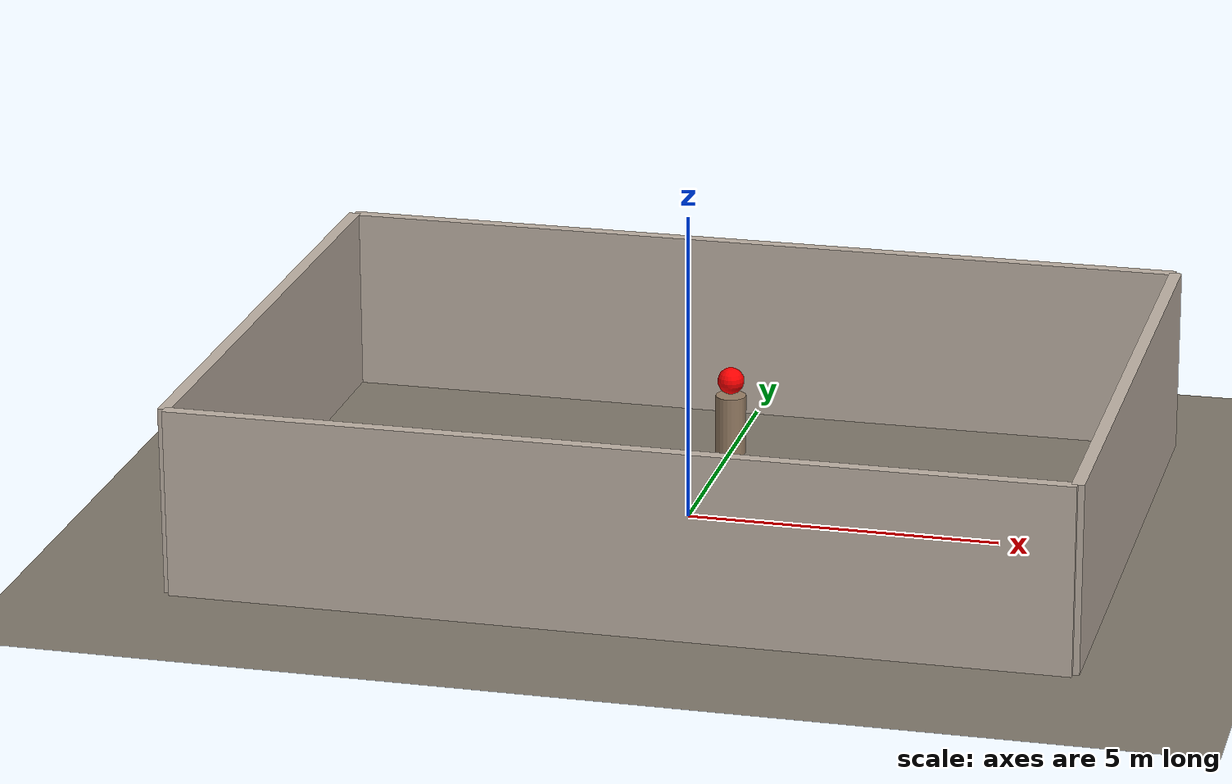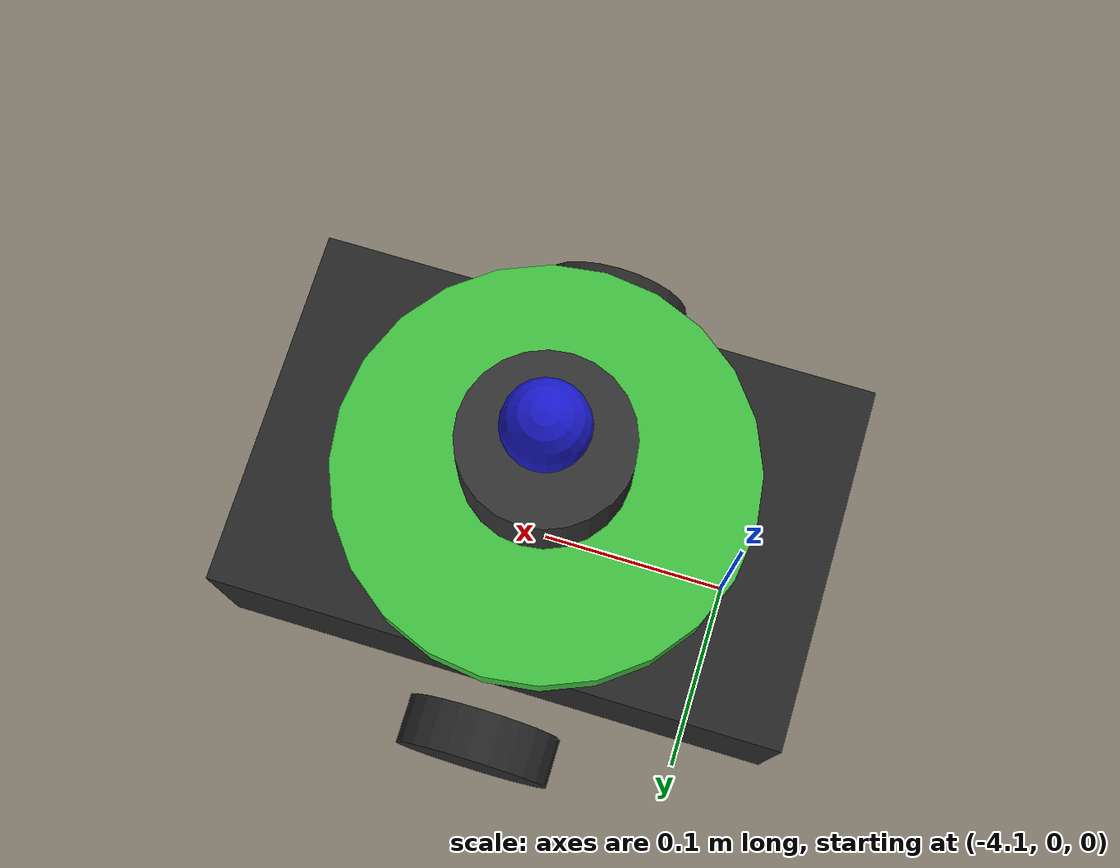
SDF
<?xml version="1.0" ?>
<sdf version="1.6">
  <world name="test_case_arena">

    <!-- ── Required Gazebo plugins ──────────────────────────────── -->
    <plugin filename="gz-sim-physics-system"        name="gz::sim::systems::Physics"/>
    <plugin filename="gz-sim-user-commands-system"  name="gz::sim::systems::UserCommands"/>
    <plugin filename="gz-sim-scene-broadcaster-system" name="gz::sim::systems::SceneBroadcaster"/>
    <plugin filename="gz-sim-sensors-system"        name="gz::sim::systems::Sensors">
      <render_engine>ogre2</render_engine>
    </plugin>
    <plugin filename="gz-sim-contact-system"        name="gz::sim::systems::Contact"/>

    <scene>
      <ambient>0.65 0.65 0.65 1</ambient>
      <background>0.3 0.3 0.4 1</background>
    </scene>

    <!-- Central lighting -->
    <light name="sun" type="directional">
      <pose>0 0 10 0 0 0</pose>
      <diffuse>0.9 0.9 0.85 1</diffuse>
      <specular>0.3 0.3 0.3 1</specular>
      <direction>-0.5 -0.5 -1</direction>
      <attenuation><range>100</range><constant>0.4</constant><linear>0.01</linear><quadratic>0.001</quadratic></attenuation>
    </light>

    <light name="fill_light" type="point">
      <pose>0 0 5 0 0 0</pose>
      <diffuse>0.7 0.7 0.7 1</diffuse>
      <specular>0.1 0.1 0.1 1</specular>
      <attenuation><range>30</range><constant>0.3</constant><linear>0.01</linear><quadratic>0.001</quadratic></attenuation>
    </light>

    <physics type="ode">
      <max_step_size>0.001</max_step_size>
      <real_time_factor>1.0</real_time_factor>
      <real_time_update_rate>1000</real_time_update_rate>
    </physics>

    <!-- ══════════════ FLOOR ══════════════ -->
    <model name="floor">
      <static>true</static>
      <link name="link">
        <collision name="collision">
          <geometry><plane><normal>0 0 1</normal><size>30 30</size></plane></geometry>
        </collision>
        <visual name="visual">
          <geometry><plane><normal>0 0 1</normal><size>30 30</size></plane></geometry>
          <material>
            <ambient>0.45 0.42 0.38 1</ambient>
            <diffuse>0.50 0.47 0.42 1</diffuse>
          </material>
        </visual>
      </link>
    </model>

    <!-- ══════════════ ARENA WALLS (14 m × 10 m) ══════════════ -->
    <!-- North wall  y = +5 -->
    <model name="wall_north">
      <static>true</static>
      <link name="link">
        <pose>0 5 1.5 0 0 0</pose>
        <collision name="c"><geometry><box><size>14 0.2 3</size></box></geometry></collision>
        <visual name="v">
          <geometry><box><size>14 0.2 3</size></box></geometry>
          <material><ambient>0.70 0.65 0.60 1</ambient><diffuse>0.75 0.70 0.65 1</diffuse></material>
        </visual>
      </link>
    </model>
    <!-- South wall  y = −5 -->
    <model name="wall_south">
      <static>true</static>
      <link name="link">
        <pose>0 -5 1.5 0 0 0</pose>
        <collision name="c"><geometry><box><size>14 0.2 3</size></box></geometry></collision>
        <visual name="v">
          <geometry><box><size>14 0.2 3</size></box></geometry>
          <material><ambient>0.70 0.65 0.60 1</ambient><diffuse>0.75 0.70 0.65 1</diffuse></material>
        </visual>
      </link>
    </model>
    <!-- East wall   x = +7 -->
    <model name="wall_east">
      <static>true</static>
      <link name="link">
        <pose>7 0 1.5 0 0 0</pose>
        <collision name="c"><geometry><box><size>0.2 10 3</size></box></geometry></collision>
        <visual name="v">
          <geometry><box><size>0.2 10 3</size></box></geometry>
          <material><ambient>0.70 0.65 0.60 1</ambient><diffuse>0.75 0.70 0.65 1</diffuse></material>
        </visual>
      </link>
    </model>
    <!-- West wall   x = −7 -->
    <model name="wall_west">
      <static>true</static>
      <link name="link">
        <pose>-7 0 1.5 0 0 0</pose>
        <collision name="c"><geometry><box><size>0.2 10 3</size></box></geometry></collision>
        <visual name="v">
          <geometry><box><size>0.2 10 3</size></box></geometry>
          <material><ambient>0.70 0.65 0.60 1</ambient><diffuse>0.75 0.70 0.65 1</diffuse></material>
        </visual>
      </link>
    </model>

    <model name="human_1">
      <static>true</static>
      <pose>0 3 0 0 0 0</pose>
      <link name="link">
        <!-- Body: beige cylinder, h=1.0 m, r=0.25 m  centred at z=0.5 -->
        <pose>0 0 0.5 0 0 0</pose>
        <inertial>
          <mass>1.0</mass>
          <inertia><ixx>0.05</ixx><iyy>0.05</iyy><izz>0.05</izz></inertia>
        </inertial>
        <collision name="body_collision">
          <geometry><cylinder><radius>0.25</radius><length>1.0</length></cylinder></geometry>
        </collision>
        <visual name="body">
          <geometry><cylinder><radius>0.25</radius><length>1.0</length></cylinder></geometry>
          <material><ambient>0.55 0.45 0.35 1</ambient><diffuse>0.60 0.50 0.40 1</diffuse></material>
        </visual>
        <!-- Head: red sphere, r=0.22 m, at z=0.75 above body centre (z=1.25 world) -->
        <visual name="head">
          <pose>0 0 0.75 0 0 0</pose>
          <geometry><sphere><radius>0.22</radius></sphere></geometry>
          <material><ambient>1.0 0.0 0.0 1</ambient><diffuse>1.0 0.0 0.0 1</diffuse></material>
        </visual>
      </link>
    </model>

    <!-- ══════════════ TURTLEBOT3 ROVER ══════════════ -->
    <model name="turtlebot3_rover">
      <static>false</static>
      <pose>-4 0 0.0 0 0 0</pose>

      <link name="base_footprint"><pose>0 0 0.01 0 0 0</pose></link>

      <link name="base_link">
        <pose>0 0 0.08 0 0 0</pose>
        <inertial><mass>1.5</mass><inertia><ixx>0.01</ixx><iyy>0.01</iyy><izz>0.01</izz></inertia></inertial>
        <collision name="base_collision"><geometry><box><size>0.28 0.18 0.08</size></box></geometry></collision>
        <visual name="base_visual">
          <geometry><box><size>0.28 0.18 0.08</size></box></geometry>
          <material><ambient>0.1 0.1 0.1 1</ambient><diffuse>0.15 0.15 0.15 1</diffuse></material>
        </visual>
      </link>

      <link name="top_plate">
        <pose>0 0 0.14 0 0 0</pose>
        <inertial><mass>0.3</mass><inertia><ixx>0.002</ixx><iyy>0.002</iyy><izz>0.002</izz></inertia></inertial>
        <collision name="c"><geometry><cylinder><radius>0.10</radius><length>0.02</length></cylinder></geometry></collision>
        <visual name="v">
          <geometry><cylinder><radius>0.10</radius><length>0.02</length></cylinder></geometry>
          <material><ambient>0.2 0.7 0.2 1</ambient><diffuse>0.25 0.75 0.25 1</diffuse></material>
        </visual>
      </link>

      <link name="wheel_left">
        <pose>0 0.12 0.04 -1.5708 0 0</pose>
        <inertial><mass>0.15</mass><inertia><ixx>0.0001</ixx><iyy>0.0001</iyy><izz>0.0001</izz></inertia></inertial>
        <collision name="c"><geometry><cylinder><radius>0.04</radius><length>0.025</length></cylinder></geometry>
          <surface><friction><ode><mu>1.0</mu><mu2>1.0</mu2></ode></friction></surface></collision>
        <visual name="v"><geometry><cylinder><radius>0.04</radius><length>0.025</length></cylinder></geometry>
          <material><ambient>0.1 0.1 0.1 1</ambient><diffuse>0.15 0.15 0.15 1</diffuse></material></visual>
      </link>

      <link name="wheel_right">
        <pose>0 -0.12 0.04 -1.5708 0 0</pose>
        <inertial><mass>0.15</mass><inertia><ixx>0.0001</ixx><iyy>0.0001</iyy><izz>0.0001</izz></inertia></inertial>
        <collision name="c"><geometry><cylinder><radius>0.04</radius><length>0.025</length></cylinder></geometry>
          <surface><friction><ode><mu>1.0</mu><mu2>1.0</mu2></ode></friction></surface></collision>
        <visual name="v"><geometry><cylinder><radius>0.04</radius><length>0.025</length></cylinder></geometry>
          <material><ambient>0.1 0.1 0.1 1</ambient><diffuse>0.15 0.15 0.15 1</diffuse></material></visual>
      </link>

      <link name="caster_front">
        <pose>0.1 0 0.015 0 0 0</pose>
        <inertial><mass>0.05</mass><inertia><ixx>0.00001</ixx><iyy>0.00001</iyy><izz>0.00001</izz></inertia></inertial>
        <collision name="c"><geometry><sphere><radius>0.015</radius></sphere></geometry>
          <surface><friction><ode><mu>0.0</mu><mu2>0.0</mu2></ode></friction></surface></collision>
        <visual name="v"><geometry><sphere><radius>0.015</radius></sphere></geometry>
          <material><ambient>0.3 0.3 0.3 1</ambient></material></visual>
      </link>

      <link name="caster_back">
        <pose>-0.1 0 0.015 0 0 0</pose>
        <inertial><mass>0.05</mass><inertia><ixx>0.00001</ixx><iyy>0.00001</iyy><izz>0.00001</izz></inertia></inertial>
        <collision name="c"><geometry><sphere><radius>0.015</radius></sphere></geometry>
          <surface><friction><ode><mu>0.0</mu><mu2>0.0</mu2></ode></friction></surface></collision>
        <visual name="v"><geometry><sphere><radius>0.015</radius></sphere></geometry>
          <material><ambient>0.3 0.3 0.3 1</ambient></material></visual>
      </link>

      <link name="lidar_link">
        <pose>0 0 0.18 0 0 0</pose>
        <inertial><mass>0.2</mass><inertia><ixx>0.001</ixx><iyy>0.001</iyy><izz>0.001</izz></inertia></inertial>
        <collision name="c"><geometry><cylinder><radius>0.04</radius><length>0.04</length></cylinder></geometry></collision>
        <visual name="v"><geometry><cylinder><radius>0.04</radius><length>0.04</length></cylinder></geometry>
          <material><ambient>0.2 0.2 0.2 1</ambient></material></visual>
        <sensor name="lidar" type="gpu_lidar">
          <always_on>true</always_on><visualize>false</visualize><update_rate>10</update_rate>
          <topic>scan</topic><gz_frame_id>lidar_link</gz_frame_id>
          <lidar>
            <scan><horizontal><samples>360</samples><resolution>1</resolution>
              <min_angle>-3.14159</min_angle><max_angle>3.14159</max_angle></horizontal></scan>
            <range><min>0.12</min><max>12.0</max><resolution>0.01</resolution></range>
            <noise><type>gaussian</type><mean>0.0</mean><stddev>0.01</stddev></noise>
          </lidar>
        </sensor>
      </link>

      <!-- Minimal single front camera (for TF tree only — perception not used) -->
      <link name="camera_link">
        <pose>0 0 0.22 0 0 0</pose>
        <inertial><mass>0.1</mass><inertia><ixx>0.0001</ixx><iyy>0.0001</iyy><izz>0.0001</izz></inertia></inertial>
        <collision name="c"><geometry><sphere><radius>0.02</radius></sphere></geometry></collision>
        <visual name="v"><geometry><sphere><radius>0.02</radius></sphere></geometry>
          <material><ambient>0.1 0.1 0.8 1</ambient></material></visual>
      </link>

      <joint name="base_joint"        type="fixed">  <parent>base_footprint</parent><child>base_link</child></joint>
      <joint name="top_plate_joint"   type="fixed">  <parent>base_link</parent><child>top_plate</child></joint>
      <joint name="wheel_left_joint"  type="revolute"><parent>base_link</parent><child>wheel_left</child>
        <axis><xyz>0 0 1</xyz><limit><lower>-1e16</lower><upper>1e16</upper></limit></axis></joint>
      <joint name="wheel_right_joint" type="revolute"><parent>base_link</parent><child>wheel_right</child>
        <axis><xyz>0 0 1</xyz><limit><lower>-1e16</lower><upper>1e16</upper></limit></axis></joint>
      <joint name="caster_front_joint" type="ball"><parent>base_link</parent><child>caster_front</child></joint>
      <joint name="caster_back_joint"  type="ball"><parent>base_link</parent><child>caster_back</child></joint>
      <joint name="lidar_joint"   type="fixed"><parent>top_plate</parent><child>lidar_link</child></joint>
      <joint name="camera_joint"  type="fixed"><parent>lidar_link</parent><child>camera_link</child></joint>

      <plugin filename="gz-sim-diff-drive-system" name="gz::sim::systems::DiffDrive">
        <left_joint>wheel_left_joint</left_joint>
        <right_joint>wheel_right_joint</right_joint>
        <wheel_separation>0.24</wheel_separation>
        <wheel_radius>0.04</wheel_radius>
        <max_linear_acceleration>1.0</max_linear_acceleration>
        <topic>cmd_vel</topic>
        <odom_topic>odom</odom_topic>
        <frame_id>odom</frame_id>
        <child_frame_id>base_footprint</child_frame_id>
        <odom_publish_frequency>30</odom_publish_frequency>
      </plugin>
    </model>

  </world>
</sdf>
